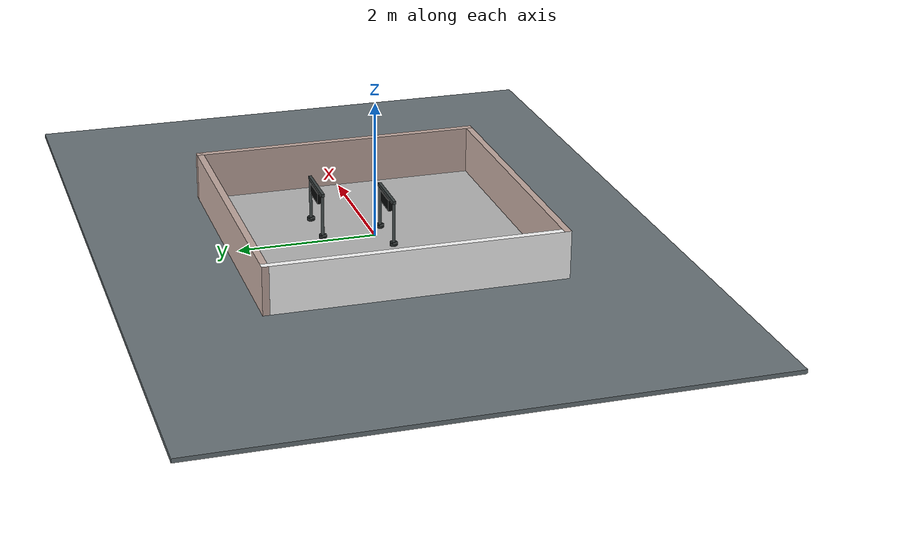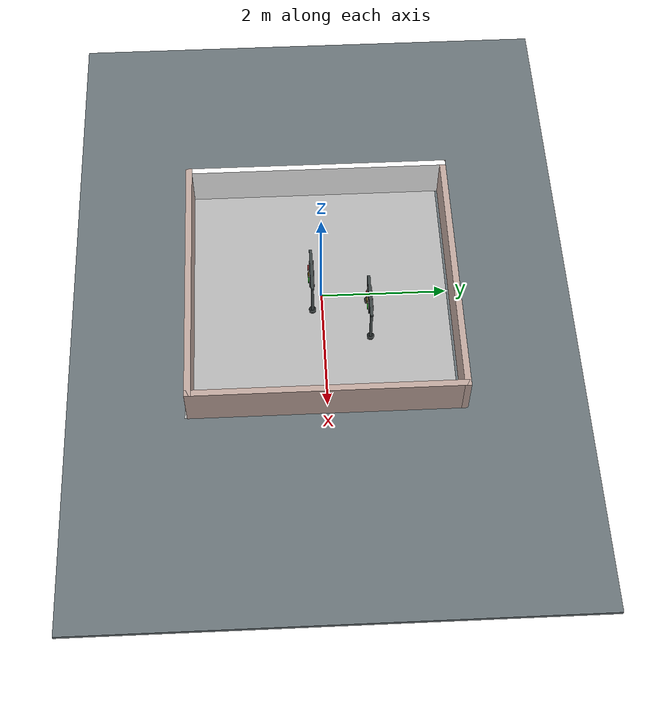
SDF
<sdf version="1.7">
 <world name="gazebo_test">
  <gravity>0 0 -9.8</gravity>
  <physics name="default_physics" type="ode">
   <max_step_size>0.001</max_step_size>
   <real_time_update_rate>1000</real_time_update_rate>
   <real_time_factor>1</real_time_factor>
  </physics>
  <scene>
   <ambient>0.55 0.55 0.55 1</ambient>
   <background>0.72 0.77 0.82 1</background>
   <shadows>1</shadows>
  </scene>
  <light name="sun" type="directional">
   <pose>0 0 10 0 -0 0</pose>
   <diffuse>0.9 0.9 0.9 1</diffuse>
   <specular>0.2 0.2 0.2 1</specular>
   <direction>-0.45 0.25 -0.86</direction>
   <attenuation><range>10</range></attenuation>
   <spot><inner_angle>0</inner_angle><outer_angle>0</outer_angle><falloff>0</falloff></spot>
  </light>
  <model name="gallery_floor">
   <static>1</static>
   <link name="floor">
    <collision name="collision">
     <pose>0 0 -0.035 0 -0 0</pose>
     <geometry><box><size>11 8 0.06</size></box></geometry>
    </collision>
    <visual name="visual">
     <pose>0 0 -0.035 0 -0 0</pose>
     <geometry><box><size>11 8 0.06</size></box></geometry>
     <material><ambient>0.24 0.27 0.29 1</ambient><diffuse>0.42 0.46 0.48 1</diffuse></material>
    </visual>
   </link>
  </model>
  <magnetic_field>6e-06 2.3e-05 -4.2e-05</magnetic_field>
  <atmosphere type="adiabatic"/>
  <spherical_coordinates>
   <surface_model>EARTH_WGS84</surface_model>
   <latitude_deg>0</latitude_deg>
   <longitude_deg>0</longitude_deg>
   <elevation>0</elevation>
   <heading_deg>0</heading_deg>
  </spherical_coordinates>
  <model name="map_walls">
   <static>1</static>
   <link name="south_wall">
    <pose>0 -2.1 0 0 -0 0</pose>
    <collision name="collision">
     <pose>0 0 0.35 0 -0 0</pose>
     <geometry><box><size>4.3 0.1 0.7</size></box></geometry>
    </collision>
    <visual name="visual">
     <pose>0 0 0.35 0 -0 0</pose>
     <geometry><box><size>4.3 0.1 0.7</size></box></geometry>
     <material>
      <ambient>0.760784 0.662745 0.627451 1</ambient>
      <diffuse>0.760784 0.662745 0.627451 1</diffuse>
     </material>
    </visual>
   </link>
   <link name="east_wall">
    <pose>2.1 0 0 0 -0 1.5708</pose>
    <collision name="collision">
     <pose>0 0 0.35 0 -0 0</pose>
     <geometry><box><size>4.3 0.1 0.7</size></box></geometry>
    </collision>
    <visual name="visual">
     <pose>0 0 0.35 0 -0 0</pose>
     <geometry><box><size>4.3 0.1 0.7</size></box></geometry>
     <material>
      <ambient>0.760784 0.662745 0.627451 1</ambient>
      <diffuse>0.760784 0.662745 0.627451 1</diffuse>
     </material>
    </visual>
   </link>
   <link name="north_wall">
    <pose>0 2.1 0 0 -0 3.14159</pose>
    <collision name="collision">
     <pose>0 0 0.35 0 -0 0</pose>
     <geometry><box><size>4.3 0.1 0.7</size></box></geometry>
    </collision>
    <visual name="visual">
     <pose>0 0 0.35 0 -0 0</pose>
     <geometry><box><size>4.3 0.1 0.7</size></box></geometry>
     <material>
      <ambient>0.760784 0.662745 0.627451 1</ambient>
      <diffuse>0.760784 0.662745 0.627451 1</diffuse>
     </material>
    </visual>
   </link>
   <link name="west_wall">
    <pose>-2.1 0 0 0 0 -1.5708</pose>
    <collision name="collision">
     <pose>0 0 0.35 0 -0 0</pose>
     <geometry><box><size>4.3 0.1 0.7</size></box></geometry>
    </collision>
    <visual name="visual">
     <pose>0 0 0.35 0 -0 0</pose>
     <geometry><box><size>4.3 0.1 0.7</size></box></geometry>
     <material><ambient>1 1 1 1</ambient><diffuse>1 1 1 1</diffuse></material>
    </visual>
   </link>
  </model>
  <model name="map_plane">
   <static>1</static>
   <link name="link">
    <visual name="visual">
     <geometry><plane><normal>0 0 1</normal><size>4.2 4.2</size></plane></geometry>
     <material>
      <script>
       <uri>model://map_plane/materials/scripts</uri>
       <uri>model://map_plane/materials/textures</uri>
       <name>map/material</name>
      </script>
     </material>
    </visual>
    <collision name="collision">
     <geometry><plane><normal>0 0 1</normal><size>4.2 4.2</size></plane></geometry>
    </collision>
   </link>
   <pose>0.045473 -0.086859 0 0 -0 0</pose>
  </model>
  <model name="traffic_light">
   <static>1</static>
   <link name="gantry">
    <collision name="left_post_collision">
     <pose>-0.34 0 0.32 0 -0 0</pose>
     <geometry><cylinder><radius>0.022</radius><length>0.64</length></cylinder></geometry>
    </collision>
    <collision name="right_post_collision">
     <pose>0.34 0 0.32 0 -0 0</pose>
     <geometry><cylinder><radius>0.022</radius><length>0.64</length></cylinder></geometry>
    </collision>
    <collision name="crossbar_collision">
     <pose>0 0 0.66 0 -0 0</pose>
     <geometry><box><size>0.75 0.045 0.045</size></box></geometry>
    </collision>
    <collision name="housing_collision">
     <pose>0 0 0.55 0 -0 0</pose>
     <geometry><box><size>0.4 0.075 0.16</size></box></geometry>
    </collision>
    <visual name="left_foot">
     <pose>-0.34 0 0.025 0 -0 0</pose>
     <geometry><cylinder><radius>0.055</radius><length>0.05</length></cylinder></geometry>
     <material><ambient>0.06 0.07 0.07 1</ambient><diffuse>0.12 0.14 0.14 1</diffuse></material>
    </visual>
    <visual name="right_foot">
     <pose>0.34 0 0.025 0 -0 0</pose>
     <geometry><cylinder><radius>0.055</radius><length>0.05</length></cylinder></geometry>
     <material><ambient>0.06 0.07 0.07 1</ambient><diffuse>0.12 0.14 0.14 1</diffuse></material>
    </visual>
    <visual name="left_post">
     <pose>-0.34 0 0.32 0 -0 0</pose>
     <geometry><cylinder><radius>0.022</radius><length>0.64</length></cylinder></geometry>
     <material>
      <ambient>0.16 0.18 0.18 1</ambient>
      <diffuse>0.28 0.31 0.31 1</diffuse>
      <specular>0.25 0.25 0.25 1</specular>
     </material>
    </visual>
    <visual name="right_post">
     <pose>0.34 0 0.32 0 -0 0</pose>
     <geometry><cylinder><radius>0.022</radius><length>0.64</length></cylinder></geometry>
     <material>
      <ambient>0.16 0.18 0.18 1</ambient>
      <diffuse>0.28 0.31 0.31 1</diffuse>
      <specular>0.25 0.25 0.25 1</specular>
     </material>
    </visual>
    <visual name="crossbar">
     <pose>0 0 0.66 0 -0 0</pose>
     <geometry><box><size>0.75 0.045 0.045</size></box></geometry>
     <material>
      <ambient>0.12 0.14 0.14 1</ambient>
      <diffuse>0.24 0.27 0.27 1</diffuse>
      <specular>0.25 0.25 0.25 1</specular>
     </material>
    </visual>
    <visual name="left_hanger">
     <pose>-0.14 0 0.615 0 -0 0</pose>
     <geometry><box><size>0.025 0.035 0.07</size></box></geometry>
     <material><ambient>0.06 0.07 0.07 1</ambient><diffuse>0.12 0.14 0.14 1</diffuse></material>
    </visual>
    <visual name="right_hanger">
     <pose>0.14 0 0.615 0 -0 0</pose>
     <geometry><box><size>0.025 0.035 0.07</size></box></geometry>
     <material><ambient>0.06 0.07 0.07 1</ambient><diffuse>0.12 0.14 0.14 1</diffuse></material>
    </visual>
    <visual name="housing">
     <pose>0 0 0.55 0 -0 0</pose>
     <geometry><box><size>0.4 0.075 0.16</size></box></geometry>
     <material>
      <ambient>0.008 0.01 0.01 1</ambient>
      <diffuse>0.016 0.02 0.02 1</diffuse>
      <specular>0.1 0.1 0.1 1</specular>
     </material>
    </visual>
    <visual name="red_lens">
     <pose>-0.12 -0.044 0.55 1.5708 -0 0</pose>
     <geometry><cylinder><radius>0.045</radius><length>0.018</length></cylinder></geometry>
     <material>
      <ambient>0.045 0.003 0.003 1</ambient>
      <diffuse>0.55 0.04 0.04 1</diffuse>
      <specular>0.15 0.15 0.15 1</specular>
     </material>
     <plugin name="red_color_plugin" filename="libgazebo_ros_model_color.so">
      <robotNamespace>/traffic_light</robotNamespace>
      <serviceName>red_lens_color</serviceName>
      <color>0.55 0.04 0.04 1</color>
     </plugin>
    </visual>
    <visual name="yellow_lens">
     <pose>0 -0.044 0.55 1.5708 -0 0</pose>
     <geometry><cylinder><radius>0.045</radius><length>0.018</length></cylinder></geometry>
     <material>
      <ambient>0.025 0.015 0.003 1</ambient>
      <diffuse>0.55 0.4 0.04 1</diffuse>
      <specular>0.15 0.15 0.15 1</specular>
     </material>
     <plugin name="yellow_color_plugin" filename="libgazebo_ros_model_color.so">
      <robotNamespace>/traffic_light</robotNamespace>
      <serviceName>yellow_lens_color</serviceName>
      <color>0.55 0.40 0.04 1</color>
     </plugin>
    </visual>
    <visual name="green_lens">
     <pose>0.12 -0.044 0.55 1.5708 -0 0</pose>
     <geometry><cylinder><radius>0.045</radius><length>0.018</length></cylinder></geometry>
     <material>
      <ambient>0.003 0.045 0.004 1</ambient>
      <diffuse>0.04 0.55 0.05 1</diffuse>
      <specular>0.15 0.15 0.15 1</specular>
     </material>
     <plugin name="green_color_plugin" filename="libgazebo_ros_model_color.so">
      <robotNamespace>/traffic_light</robotNamespace>
      <serviceName>green_lens_color</serviceName>
      <color>0.04 0.55 0.05 1</color>
     </plugin>
    </visual>
   </link>
   <pose>-0.063207 -0.158611 0 0 -0 0</pose>
  </model>
  <model name="traffic_light_0">
   <static>1</static>
   <link name="gantry">
    <collision name="left_post_collision">
     <pose>-0.34 0 0.32 0 -0 0</pose>
     <geometry><cylinder><radius>0.022</radius><length>0.64</length></cylinder></geometry>
    </collision>
    <collision name="right_post_collision">
     <pose>0.34 0 0.32 0 -0 0</pose>
     <geometry><cylinder><radius>0.022</radius><length>0.64</length></cylinder></geometry>
    </collision>
    <collision name="crossbar_collision">
     <pose>0 0 0.66 0 -0 0</pose>
     <geometry><box><size>0.75 0.045 0.045</size></box></geometry>
    </collision>
    <collision name="housing_collision">
     <pose>0 0 0.55 0 -0 0</pose>
     <geometry><box><size>0.4 0.075 0.16</size></box></geometry>
    </collision>
    <visual name="left_foot">
     <pose>-0.34 0 0.025 0 -0 0</pose>
     <geometry><cylinder><radius>0.055</radius><length>0.05</length></cylinder></geometry>
     <material><ambient>0.06 0.07 0.07 1</ambient><diffuse>0.12 0.14 0.14 1</diffuse></material>
    </visual>
    <visual name="right_foot">
     <pose>0.34 0 0.025 0 -0 0</pose>
     <geometry><cylinder><radius>0.055</radius><length>0.05</length></cylinder></geometry>
     <material><ambient>0.06 0.07 0.07 1</ambient><diffuse>0.12 0.14 0.14 1</diffuse></material>
    </visual>
    <visual name="left_post">
     <pose>-0.34 0 0.32 0 -0 0</pose>
     <geometry><cylinder><radius>0.022</radius><length>0.64</length></cylinder></geometry>
     <material>
      <ambient>0.16 0.18 0.18 1</ambient>
      <diffuse>0.28 0.31 0.31 1</diffuse>
      <specular>0.25 0.25 0.25 1</specular>
     </material>
    </visual>
    <visual name="right_post">
     <pose>0.34 0 0.32 0 -0 0</pose>
     <geometry><cylinder><radius>0.022</radius><length>0.64</length></cylinder></geometry>
     <material>
      <ambient>0.16 0.18 0.18 1</ambient>
      <diffuse>0.28 0.31 0.31 1</diffuse>
      <specular>0.25 0.25 0.25 1</specular>
     </material>
    </visual>
    <visual name="crossbar">
     <pose>0 0 0.66 0 -0 0</pose>
     <geometry><box><size>0.75 0.045 0.045</size></box></geometry>
     <material>
      <ambient>0.12 0.14 0.14 1</ambient>
      <diffuse>0.24 0.27 0.27 1</diffuse>
      <specular>0.25 0.25 0.25 1</specular>
     </material>
    </visual>
    <visual name="left_hanger">
     <pose>-0.14 0 0.615 0 -0 0</pose>
     <geometry><box><size>0.025 0.035 0.07</size></box></geometry>
     <material><ambient>0.06 0.07 0.07 1</ambient><diffuse>0.12 0.14 0.14 1</diffuse></material>
    </visual>
    <visual name="right_hanger">
     <pose>0.14 0 0.615 0 -0 0</pose>
     <geometry><box><size>0.025 0.035 0.07</size></box></geometry>
     <material><ambient>0.06 0.07 0.07 1</ambient><diffuse>0.12 0.14 0.14 1</diffuse></material>
    </visual>
    <visual name="housing">
     <pose>0 0 0.55 0 -0 0</pose>
     <geometry><box><size>0.4 0.075 0.16</size></box></geometry>
     <material>
      <ambient>0.008 0.01 0.01 1</ambient>
      <diffuse>0.016 0.02 0.02 1</diffuse>
      <specular>0.1 0.1 0.1 1</specular>
     </material>
    </visual>
    <visual name="red_lens">
     <pose>-0.12 -0.044 0.55 1.5708 -0 0</pose>
     <geometry><cylinder><radius>0.045</radius><length>0.018</length></cylinder></geometry>
     <material>
      <ambient>0.045 0.003 0.003 1</ambient>
      <diffuse>0.55 0.04 0.04 1</diffuse>
      <specular>0.15 0.15 0.15 1</specular>
     </material>
     <plugin name="red_color_plugin" filename="libgazebo_ros_model_color.so">
      <robotNamespace>/traffic_light_0</robotNamespace>
      <serviceName>red_lens_color</serviceName>
      <color>0.55 0.04 0.04 1</color>
     </plugin>
    </visual>
    <visual name="yellow_lens">
     <pose>0 -0.044 0.55 1.5708 -0 0</pose>
     <geometry><cylinder><radius>0.045</radius><length>0.018</length></cylinder></geometry>
     <material>
      <ambient>0.025 0.015 0.003 1</ambient>
      <diffuse>0.55 0.4 0.04 1</diffuse>
      <specular>0.15 0.15 0.15 1</specular>
     </material>
     <plugin name="yellow_color_plugin" filename="libgazebo_ros_model_color.so">
      <robotNamespace>/traffic_light_0</robotNamespace>
      <serviceName>yellow_lens_color</serviceName>
      <color>0.55 0.40 0.04 1</color>
     </plugin>
    </visual>
    <visual name="green_lens">
     <pose>0.12 -0.044 0.55 1.5708 -0 0</pose>
     <geometry><cylinder><radius>0.045</radius><length>0.018</length></cylinder></geometry>
     <material>
      <ambient>0.003 0.045 0.004 1</ambient>
      <diffuse>0.04 0.55 0.05 1</diffuse>
      <specular>0.15 0.15 0.15 1</specular>
     </material>
     <plugin name="green_color_plugin" filename="libgazebo_ros_model_color.so">
      <robotNamespace>/traffic_light_0</robotNamespace>
      <serviceName>green_lens_color</serviceName>
      <color>0.04 0.55 0.05 1</color>
     </plugin>
    </visual>
   </link>
   <pose>0.47249 0.73675 0 0 -0 0</pose>
  </model>
 </world>
</sdf>
